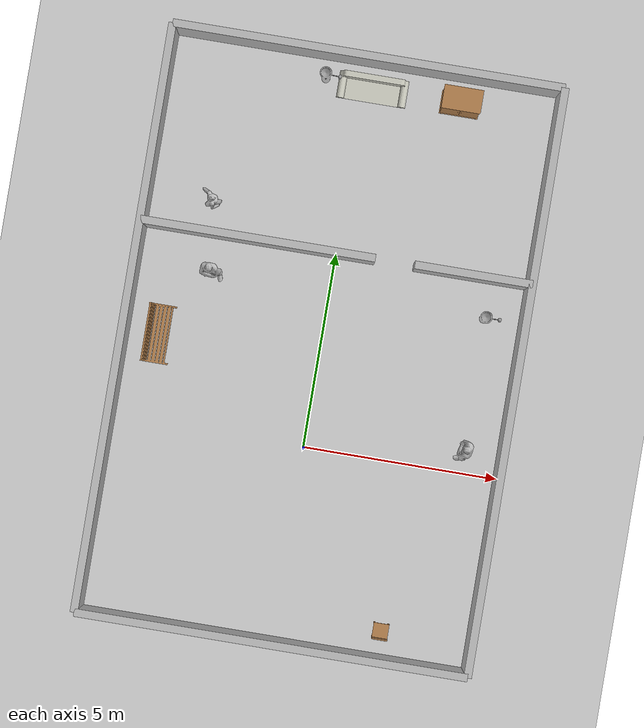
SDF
<sdf version="1.4">
 <world name="default">
  <physics type="ode">
   <gravity>0 0 -9.81</gravity>
   <ode>
    <solver><type>quick</type><iters>20</iters><sor>1.0</sor></solver>
    <constraints>
     <cfm>0.0</cfm>
     <erp>0.2</erp>
     <contact_max_correcting_vel>100.0</contact_max_correcting_vel>
     <contact_surface_layer>0.0</contact_surface_layer>
    </constraints>
   </ode>
   <real_time_update_rate>1000</real_time_update_rate>
   <max_step_size>0.001</max_step_size>
  </physics>
  <include><uri>model://sun</uri></include>
  <include><uri>model://ground_plane</uri></include>
  <model name="wall_1_model">
   <pose>0 -5 1 0 0 0</pose>
   <static>true</static>
   <link name="wall_1_body">
    <inertial>
     <mass>1.0</mass>
     <inertia><ixx>1.0</ixx><ixy>0.0</ixy><ixz>0.0</ixz><iyy>1.0</iyy><iyz>0.0</iyz><izz>1.0</izz></inertia>
    </inertial>
    <collision name="collision"><geometry><box><size>10 0.2 2</size></box></geometry></collision>
    <visual name="visual"><geometry><box><size>10 0.2 2</size></box></geometry></visual>
   </link>
  </model>
  <model name="wall_2_model">
   <pose>0 10 1 0 0 0</pose>
   <static>true</static>
   <link name="wall_2_body">
    <inertial>
     <mass>1.0</mass>
     <inertia><ixx>1.0</ixx><ixy>0.0</ixy><ixz>0.0</ixz><iyy>1.0</iyy><iyz>0.0</iyz><izz>1.0</izz></inertia>
    </inertial>
    <collision name="collision"><geometry><box><size>10 0.2 2</size></box></geometry></collision>
    <visual name="visual"><geometry><box><size>10 0.2 2</size></box></geometry></visual>
   </link>
  </model>
  <model name="wall_3_model">
   <pose>-5 2.5 1 0 0 0</pose>
   <static>true</static>
   <link name="wall_3_body">
    <inertial>
     <mass>1.0</mass>
     <inertia><ixx>1.0</ixx><ixy>0.0</ixy><ixz>0.0</ixz><iyy>1.0</iyy><iyz>0.0</iyz><izz>1.0</izz></inertia>
    </inertial>
    <collision name="collision"><geometry><box><size>0.2 15 2</size></box></geometry></collision>
    <visual name="visual"><geometry><box><size>0.2 15 2</size></box></geometry></visual>
   </link>
  </model>
  <model name="wall_4_model">
   <pose>5 2.5 1 0 0 0</pose>
   <static>true</static>
   <link name="wall_4_body">
    <inertial>
     <mass>1.0</mass>
     <inertia><ixx>1.0</ixx><ixy>0.0</ixy><ixz>0.0</ixz><iyy>1.0</iyy><iyz>0.0</iyz><izz>1.0</izz></inertia>
    </inertial>
    <collision name="collision"><geometry><box><size>0.2 15 2</size></box></geometry></collision>
    <visual name="visual"><geometry><box><size>0.2 15 2</size></box></geometry></visual>
   </link>
  </model>
  <model name="wall_5_model">
   <pose>-2 5 1 0 0 0</pose>
   <static>true</static>
   <link name="wall_5_body">
    <inertial>
     <mass>1.0</mass>
     <inertia><ixx>1.0</ixx><ixy>0.0</ixy><ixz>0.0</ixz><iyy>1.0</iyy><iyz>0.0</iyz><izz>1.0</izz></inertia>
    </inertial>
    <collision name="collision"><geometry><box><size>6 0.2 2</size></box></geometry></collision>
    <visual name="visual"><geometry><box><size>6 0.2 2</size></box></geometry></visual>
   </link>
  </model>
  <model name="wall_6_model">
   <pose>3.5 5 1 0 0 0</pose>
   <static>true</static>
   <link name="wall_6_body">
    <inertial>
     <mass>1.0</mass>
     <inertia><ixx>1.0</ixx><ixy>0.0</ixy><ixz>0.0</ixz><iyy>1.0</iyy><iyz>0.0</iyz><izz>1.0</izz></inertia>
    </inertial>
    <collision name="collision"><geometry><box><size>3 0.2 2</size></box></geometry></collision>
    <visual name="visual"><geometry><box><size>3 0.2 2</size></box></geometry></visual>
   </link>
  </model>
  <include><uri>model://dining_chair</uri><pose>2.5 -4.5 0.01 0 0 0</pose></include>
  <include>
   <uri>model://wardrobe</uri>
   <pose>2.000000 9.000000 0.000000 0.000000 0.000000 0.000000</pose>
  </include>
  <include><uri>model://bench</uri><pose>-4.465430 1.502710 0.000000 0.000000 0.000000 0.000000</pose></include>
  <include><uri>model://sofa</uri><pose>-0.518195 9.000000 0.000000 0.000000 0.000000 0.000000</pose></include>
  <include>
   <name>floor_lamp_0</name>
   <uri>model://floor_lamp</uri>
   <pose>-1.000000 9.417350 0.000000 0.000000 0.000000 0.000000</pose>
  </include>
  <include>
   <name>floor_lamp_1</name>
   <uri>model://floor_lamp</uri>
   <pose>4.000000 4.00000 0.000000 0.000000 0.000000 0.000000</pose>
  </include>
  <include>
   <name>male03</name>
   <uri>model://citizen_extras_male_03</uri>
   <pose>4.0 0.53 0.01 0.0125 0.0023 -1.718</pose>
  </include>
  <light type="point" name="male03light">
   <pose>3.6 0.53 1.6 0 0 0</pose>
   <diffuse>0.5 0.5 0.5 1</diffuse>
   <specular>0.1 0.1 0.1 1</specular>
   <attenuation>
    <range>1.0</range>
    <linear>0.01</linear>
    <constant>0.3</constant>
    <quadratic>0.0</quadratic>
   </attenuation>
   <direction>0 0 -1</direction>
   <spot><inner_angle>0.6</inner_angle><outer_angle>0.8</outer_angle><falloff>1.2</falloff></spot>
   <cast_shadows>false</cast_shadows>
  </light>
  <light type="point" name="female02light">
   <pose>-2.5 -2.63 1.5 0 0 0</pose>
   <diffuse>0.5 0.5 0.5 1</diffuse>
   <specular>0.1 0.1 0.1 1</specular>
   <attenuation>
    <range>1.0</range>
    <linear>0.01</linear>
    <constant>0.3</constant>
    <quadratic>0.0</quadratic>
   </attenuation>
   <direction>0 0 -1</direction>
   <spot><inner_angle>0.6</inner_angle><outer_angle>0.8</outer_angle><falloff>1.2</falloff></spot>
   <cast_shadows>false</cast_shadows>
  </light>
  <include>
   <name>female03</name>
   <uri>model://citizen_extras_female_03</uri>
   <pose>-3.3 5.8 0.01 0.011 0.0126 1.6451</pose>
  </include>
  <light type="point" name="female03light">
   <pose>-3.0 6.2 1.5 0 0 0</pose>
   <diffuse>0.5 0.5 0.5 1</diffuse>
   <specular>0.1 0.1 0.1 1</specular>
   <attenuation>
    <range>1.0</range>
    <linear>0.01</linear>
    <constant>0.3</constant>
    <quadratic>0.0</quadratic>
   </attenuation>
   <direction>0 0 -1</direction>
   <spot><inner_angle>0.6</inner_angle><outer_angle>0.8</outer_angle><falloff>1.2</falloff></spot>
   <cast_shadows>false</cast_shadows>
  </light>
  <light type="point" name="female02bislight">
   <pose>3.8 6.7 1.5 0 0 0</pose>
   <diffuse>0.5 0.5 0.5 1</diffuse>
   <specular>0.1 0.1 0.1 1</specular>
   <attenuation>
    <range>1.0</range>
    <linear>0.01</linear>
    <constant>0.3</constant>
    <quadratic>0.0</quadratic>
   </attenuation>
   <direction>0 0 -1</direction>
   <spot><inner_angle>0.6</inner_angle><outer_angle>0.8</outer_angle><falloff>1.2</falloff></spot>
   <cast_shadows>false</cast_shadows>
  </light>
  <include>
   <name>male03bis</name>
   <uri>model://citizen_extras_male_03</uri>
   <pose>-3.000000 4.000000 0.000000 0.000000 0.000000 0.000000</pose>
  </include>
  <light type="point" name="male03bislight">
   <pose>-2.9 3.7 1.5 0 0 0</pose>
   <diffuse>0.5 0.5 0.5 1</diffuse>
   <specular>0.1 0.1 0.1 1</specular>
   <attenuation>
    <range>1.0</range>
    <linear>0.01</linear>
    <constant>0.3</constant>
    <quadratic>0.0</quadratic>
   </attenuation>
   <direction>0 0 -1</direction>
   <spot><inner_angle>0.6</inner_angle><outer_angle>0.8</outer_angle><falloff>1.2</falloff></spot>
   <cast_shadows>false</cast_shadows>
  </light>
 </world>
</sdf>

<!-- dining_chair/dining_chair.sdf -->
<sdf version="1.4">
  <model name="dining_chair">
    <static>1</static>
    <link name="link">

      <collision name="colision1">
        <pose>0 0 0 0 0 0</pose>
        <geometry>
          <mesh>
            <uri>model://dining_chair/meshes/dining_chair.stl</uri>
	    <scale> 1 1 1 </scale>
          </mesh>
        </geometry>
        <surface>
          <bounce />
          <friction>
            <ode />
          </friction>
          <contact>
            <ode />
          </contact>
        </surface>
      </collision>

      <visual name="visual1">
        <pose>0 0 0 0 0 0</pose>
        <geometry>
          <mesh>
            <uri>model://dining_chair/meshes/dining_chair.stl</uri>
	    <scale> 1 1 1 </scale>
          </mesh>
        </geometry>
        <material>
          <script>
            <uri>file://media/materials/scripts/gazebo.material</uri>
            <name>Gazebo/Wood</name>
          </script>
        </material>
      </visual>

      <velocity_decay>
        <linear>0.000000</linear>
        <angular>0.000000</angular>
      </velocity_decay>
      <self_collide>0</self_collide>
      <kinematic>0</kinematic>
      <gravity>1</gravity>
    </link>
  </model>
</sdf>

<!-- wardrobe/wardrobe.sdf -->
<sdf version="1.4">
  <model name="wardrobe">
    <static>1</static>
    <link name="link">

      <collision name="colision1">
        <pose>0 0 0 0 0 0</pose>
        <geometry>
          <mesh>
            <uri>model://wardrobe/meshes/wardrobe.stl</uri>
	    <scale> 1 1 1 </scale>
          </mesh>
        </geometry>
        <surface>
          <bounce />
          <friction>
            <ode />
          </friction>
          <contact>
            <ode />
          </contact>
        </surface>
      </collision>

      <visual name="visual1">
        <pose>0 0 0 0 0 0</pose>
        <geometry>
          <mesh>
            <uri>model://wardrobe/meshes/wardrobe.stl</uri>
	    <scale> 1 1 1 </scale>
          </mesh>
        </geometry>
        <material>
          <script>
            <uri>file://media/materials/scripts/gazebo.material</uri>
            <name>Gazebo/WoodPallet</name>
          </script>
        </material>
      </visual>

      <velocity_decay>
        <linear>0.000000</linear>
        <angular>0.000000</angular>
      </velocity_decay>
      <self_collide>0</self_collide>
      <kinematic>0</kinematic>
      <gravity>1</gravity>
    </link>
  </model>
</sdf>

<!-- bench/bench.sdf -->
<sdf version="1.4">
  <model name="bench">
    <static>1</static>
    <link name="link">

      <collision name="colision1">
        <pose>0 0 0 0 0 0</pose>
        <geometry>
          <mesh>
            <uri>model://bench/meshes/bench.stl</uri>
	    <scale> 1 1 1 </scale>
          </mesh>
        </geometry>
        <surface>
          <bounce />
          <friction>
            <ode />
          </friction>
          <contact>
            <ode />
          </contact>
        </surface>
      </collision>

      <visual name="visual1">
        <pose>0 0 0 0 0 0</pose>
        <geometry>
          <mesh>
            <uri>model://bench/meshes/bench.stl</uri>
	    <scale> 1 1 1 </scale>
          </mesh>
        </geometry>
        <material>
          <script>
            <uri>file://media/materials/scripts/gazebo.material</uri>
            <name>Gazebo/Wood</name>
          </script>
        </material>
      </visual>

      <velocity_decay>
        <linear>0.000000</linear>
        <angular>0.000000</angular>
      </velocity_decay>
      <self_collide>0</self_collide>
      <kinematic>0</kinematic>
      <gravity>1</gravity>
    </link>
  </model>
</sdf>

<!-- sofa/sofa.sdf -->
<sdf version="1.4">
  <model name="sofa">
    <static>1</static>
    <link name="link">

      <collision name="colision1">
        <pose>0 0 0 0 0 0</pose>
        <geometry>
          <mesh>
            <uri>model://sofa/meshes/sofa.stl</uri>
	    <scale> 1 1 1 </scale>
          </mesh>
        </geometry>
        <surface>
          <bounce />
          <friction>
            <ode />
          </friction>
          <contact>
            <ode />
          </contact>
        </surface>
      </collision>

      <visual name="visual1">
        <pose>0 0 0 0 0 0</pose>
        <geometry>
          <mesh>
            <uri>model://sofa/meshes/sofa.stl</uri>
	    <scale> 1 1 1 </scale>
          </mesh>
        </geometry>
        <material>
          <script>
            <uri>file://media/materials/scripts/gazebo.material</uri>
            <name>Gazebo/PaintedWall</name>
          </script>
        </material>
      </visual>

      <velocity_decay>
        <linear>0.000000</linear>
        <angular>0.000000</angular>
      </velocity_decay>
      <self_collide>0</self_collide>
      <kinematic>0</kinematic>
      <gravity>1</gravity>
    </link>
  </model>
</sdf>

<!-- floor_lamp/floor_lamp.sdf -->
<sdf version="1.4">
  <model name="floor_lamp">
    <static>1</static>
    <link name="link">

      <collision name="colision1">
        <pose>0 0 0 0 0 0</pose>
        <geometry>
          <mesh>
            <uri>model://floor_lamp/meshes/floor_lamp.stl</uri>
	    <scale> 1 1 1 </scale>
          </mesh>
        </geometry>
        <surface>
          <bounce />
          <friction>
            <ode />
          </friction>
          <contact>
            <ode />
          </contact>
        </surface>
      </collision>

      <visual name="visual1">
        <pose>0 0 0 0 0 0</pose>
        <geometry>
          <mesh>
            <uri>model://floor_lamp/meshes/floor_lamp.stl</uri>
	    <scale> 1 1 1 </scale>
          </mesh>
        </geometry>
        <material>
          <script>
            <uri>file://media/materials/scripts/gazebo.material</uri>
            <name>Gazebo/Grey</name>
          </script>
        </material>
      </visual>

      <velocity_decay>
        <linear>0.000000</linear>
        <angular>0.000000</angular>
      </velocity_decay>
      <self_collide>0</self_collide>
      <kinematic>0</kinematic>
      <gravity>1</gravity>
    </link>
  </model>
</sdf>

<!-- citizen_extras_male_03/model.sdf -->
<sdf version="1.4">

 <model name="citizen_extras_male_03">

    <link name="link">

     <inertial>

       <mass>20</mass>

       <inertia>

         <ixx>0.0</ixx>

         <ixy>0.0</ixy>

         <ixz>0.0</ixz>

         <iyy>0.0</iyy>

         <iyz>0.0</iyz>

         <izz>0.0</izz>

       </inertia>

     </inertial>

     <collision name="collision">

       <pose>0 0 0 0 0 0</pose>

       <geometry>

         <mesh>

           <uri>model://citizen_extras_male_03/meshes/mesh.dae</uri>

         </mesh>

       </geometry>

     </collision>

     <visual name="visual">

       <pose>0 0 0 0 0 0</pose>

       <geometry>

         <mesh>

           <uri>model://citizen_extras_male_03/meshes/mesh.dae</uri>

         </mesh>

       </geometry>

     </visual>

    </link>

 </model>
</sdf>

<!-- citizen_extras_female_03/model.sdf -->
<sdf version="1.4">

 <model name="citizen_extras_female_03">

    <link name="link">

     <inertial>

       <mass>20</mass>

       <inertia>

         <ixx>0.0</ixx>

         <ixy>0.0</ixy>

         <ixz>0.0</ixz>

         <iyy>0.0</iyy>

         <iyz>0.0</iyz>

         <izz>0.0</izz>

       </inertia>

     </inertial>

     <collision name="collision">

       <pose>0 0 0 0 0 0</pose>

       <geometry>

         <mesh>

           <uri>model://citizen_extras_female_03/meshes/mesh.dae</uri>

         </mesh>

       </geometry>

     </collision>

     <visual name="visual">

       <pose>0 0 0 0 0 0</pose>

       <geometry>

         <mesh>

           <uri>model://citizen_extras_female_03/meshes/mesh.dae</uri>

         </mesh>

       </geometry>

     </visual>

    </link>

 </model>
</sdf>
